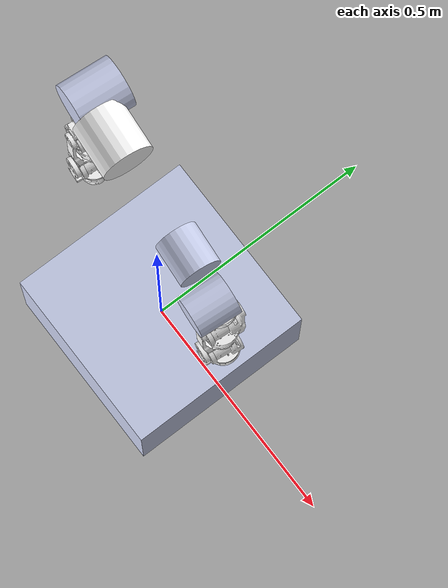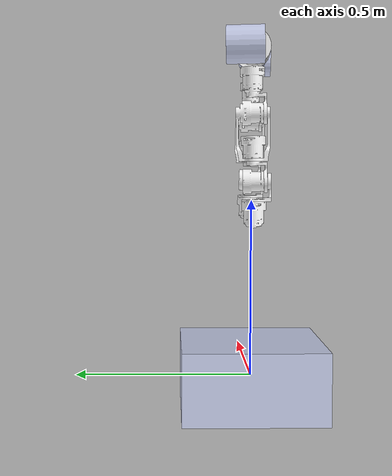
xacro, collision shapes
<?xml version='1.0' encoding='utf-8'?>
<robot name="dual_arm_1kg" xmlns:xacro="http://www.ros.org/wiki/xacro">

  <!-- Hardware plugin parameter: default to mock simulation -->
  <xacro:arg name="hw_plugin" default="mock_components/GenericSystem" />

  <link name="base_link">
    <inertial>
      <origin xyz="-1.7653E-05 0.1789 0.00018456" rpy="0 0 0" />
      <mass value="10.998" />
      <inertia ixx="0.3066" ixy="1.7304E-06" ixz="-1.0288E-05" iyy="0.26623" iyz="7.2468E-05" izz="0.2251" />
    </inertial>
    <visual>
      <origin xyz="0 0 0" rpy="0 0 0" />
      <geometry>
        <mesh filename="package://dual_arm_description/meshes/base_link.STL" />
      </geometry>
      <material name="">
        <color rgba="0.79216 0.81961 0.93333 1" />
      </material>
    </visual>
    <collision>
      <origin xyz="0 0 0" rpy="0 0 0" />
      <geometry>
        <box size="0.4 0.4 0.2" />
      </geometry>
    </collision>
  </link>

  <link name="laxis1_link">
    <inertial>
      <origin xyz="-0.0063819 3.8724E-06 0.0020017" rpy="0 0 0" />
      <mass value="0.21943" />
      <inertia ixx="0.00016599" ixy="-2.3484E-07" ixz="2.0611E-07" iyy="0.00012603" iyz="-1.1767E-05" izz="0.0001292" />
    </inertial>
    <visual>
      <origin xyz="0 0 0" rpy="0 0 0" />
      <geometry>
        <mesh filename="package://dual_arm_description/meshes/laxis1_link.STL" />
      </geometry>
      <material name="">
        <color rgba="0.79216 0.81961 0.93333 1" />
      </material>
    </visual>
    <collision>
      <origin xyz="-0.015 0 0" rpy="0 1.5708 0" />
      <geometry>
        <cylinder length="0.08" radius="0.04" />
      </geometry>
    </collision>
  </link>

  <joint name="laxis1_joint" type="revolute">
    <origin xyz="0.12844 -0.010901 0.9108" rpy="1.5941 0 -0.084669" />
    <parent link="base_link" />
    <child link="laxis1_link" />
    <axis xyz="1 0 0" />
    <limit lower="-3.14" upper="3.14" effort="20" velocity="2.0" />
  </joint>

  <link name="laxis2_link">
    <inertial>
      <origin xyz="-0.0151642205461063 0.00516950311812192 0.0148909964476645" rpy="0 0 0" />
      <mass value="0.213592778567682" />
      <inertia ixx="0.00018235790796228" ixy="5.37132222500932E-08" ixz="5.64047925806823E-07" iyy="0.000132556511272666" iyz="-2.24184763708786E-05" izz="7.53948619611351E-05" />
    </inertial>
    <visual>
      <origin xyz="0 0 0" rpy="0 0 0" />
      <geometry>
        <mesh filename="package://dual_arm_description/meshes/laxis2_link.STL" />
      </geometry>
      <material name="">
        <color rgba="0.792156862745098 0.819607843137255 0.933333333333333 1" />
      </material>
    </visual>
    <collision>
      <origin xyz="0 0 0" rpy="0 1.5708 0" />
      <geometry>
        <cylinder length="0.08" radius="0.04" />
      </geometry>
    </collision>
  </link>

  <joint name="laxis2_joint" type="revolute">
    <origin xyz="0.0774 -3.3783E-05 0.01715" rpy="-2.8 -1.5688 -1.5708" />
    <parent link="laxis1_link" />
    <child link="laxis2_link" />
    <axis xyz="1 0 0" />
    <limit lower="-3.14" upper="3.14" effort="20" velocity="2.0" />
  </joint>

  <link name="laxis3_link">
    <inertial>
      <origin xyz="0.0118441133081597 0.0448173893054227 0.0199281435559954" rpy="0 0 0" />
      <mass value="0.0182957033092308" />
      <inertia ixx="7.87114328237778E-06" ixy="-6.20827217800596E-08" ixz="8.30755431500317E-07" iyy="5.37647483228574E-06" iyz="-1.02401812672426E-07" izz="8.73776705364907E-06" />
    </inertial>
    <visual>
      <origin xyz="0 0 0" rpy="0 0 0" />
      <geometry>
        <mesh filename="package://dual_arm_description/meshes/laxis3_link.STL" />
      </geometry>
      <material name="">
        <color rgba="1 1 1 1" />
      </material>
    </visual>
    <collision>
      <origin xyz="0 0 0" rpy="0 0 0" />
      <geometry>
        <mesh filename="package://dual_arm_description/meshes/laxis3_link.STL" />
      </geometry>
    </collision>
  </link>

  <joint name="laxis3_joint" type="revolute">
    <origin xyz="-0.016833 0.034747 0.1012" rpy="1.393593 0.282990 1.000493" />
    <parent link="laxis2_link" />
    <child link="laxis3_link" />
    <axis xyz="0 1 0" />
    <limit lower="-3.14" upper="3.14" effort="20" velocity="2.0" />
  </joint>

  <link name="laxis4_link">
    <inertial>
      <origin xyz="0.0390421839077606 -0.0250129243501748 -0.0471342611946032" rpy="0 0 0" />
      <mass value="0.0616311590596033" />
      <inertia ixx="4.92339431179852E-05" ixy="3.8209283942534E-08" ixz="3.14550717978551E-05" iyy="7.55120020959109E-05" iyz="-4.61125036476071E-08" izz="3.73333488789559E-05" />
    </inertial>
    <visual>
      <origin xyz="0 0 0" rpy="0 0 0" />
      <geometry>
        <mesh filename="package://dual_arm_description/meshes/laxis4_link.STL" />
      </geometry>
      <material name="">
        <color rgba="1 1 1 1" />
      </material>
    </visual>
    <collision>
      <origin xyz="0 0 0" rpy="0 0 0" />
      <geometry>
        <mesh filename="package://dual_arm_description/meshes/laxis4_link.STL" />
      </geometry>
    </collision>
  </link>

  <joint name="laxis4_joint" type="revolute">
    <origin xyz="0.0098406 0.07055 0.016623" rpy="1.9399 0.41064 0.76965" />
    <parent link="laxis3_link" />
    <child link="laxis4_link" />
    <axis xyz="0 1 0" />
    <limit lower="-3.14" upper="3.14" effort="20" velocity="2.0" />
  </joint>

  <link name="laxis5_link">
    <inertial>
      <origin xyz="-0.0177232598229944 0.0448173893054237 0.0144455274141042" rpy="0 0 0" />
      <mass value="0.0182957033092307" />
      <inertia ixx="8.49343226329802E-06" ixy="9.28243029832125E-08" ixz="-9.17715334217635E-07" iyy="5.37647483228573E-06" iyz="-7.56574144277642E-08" izz="8.11547807272879E-06" />
    </inertial>
    <visual>
      <origin xyz="0 0 0" rpy="0 0 0" />
      <geometry>
        <mesh filename="package://dual_arm_description/meshes/laxis5_link.STL" />
      </geometry>
      <material name="">
        <color rgba="1 1 1 1" />
      </material>
    </visual>
    <collision>
      <origin xyz="0 0 0" rpy="0 0 0" />
      <geometry>
        <mesh filename="package://dual_arm_description/meshes/laxis5_link.STL" />
      </geometry>
    </collision>
  </link>

  <joint name="laxis5_joint" type="revolute">
    <origin xyz="0.068269 -0.019 -0.082391" rpy="-0.989216 -0.398915 -1.037184" />
    <parent link="laxis4_link" />
    <child link="laxis5_link" />
    <axis xyz="0 1 0" />
    <limit lower="-3.14" upper="3.14" effort="20" velocity="2.0" />
  </joint>

  <link name="laxis6_link">
    <inertial>
      <origin xyz="-0.0339956627845139 0.000603513294191727 0.00364359012406729" rpy="0 0 0" />
      <mass value="0.0306349253916363" />
      <inertia ixx="1.26835540628772E-05" ixy="-2.67323256579739E-07" ixz="-5.89188492528862E-08" iyy="1.04375646006907E-05" iyz="2.73962589384525E-08" izz="1.21146824475075E-05" />
    </inertial>
    <visual>
      <origin xyz="0 0 0" rpy="0 0 0" />
      <geometry>
        <mesh filename="package://dual_arm_description/meshes/laxis6_link.STL" />
      </geometry>
      <material name="">
        <color rgba="1 1 1 1" />
      </material>
    </visual>
    <collision>
      <origin xyz="0 0 0" rpy="0 0 0" />
      <geometry>
        <mesh filename="package://dual_arm_description/meshes/laxis6_link.STL" />
      </geometry>
    </collision>
  </link>

  <joint name="laxis6_joint" type="revolute">
    <origin xyz="-0.014851 0.070309 0.012309" rpy="2.4552 0.079108 -1.6355" />
    <parent link="laxis5_link" />
    <child link="laxis6_link" />
    <axis xyz="0 1 0" />
    <limit lower="-3.14" upper="3.14" effort="20" velocity="2.0" />
  </joint>

  <link name="laxis7_link">
    <inertial>
      <origin xyz="0.121269049640641 -0.435142426901518 0.685643187482132" rpy="0 0 0" />
      <mass value="12.1217453298508" />
      <inertia ixx="1.52363058130509" ixy="-0.0377682920302424" ixz="-0.0826026602861309" iyy="1.42942310844602" iyz="-0.339016068416828" izz="0.51577930701864" />
    </inertial>
    <visual>
      <origin xyz="0 0 0" rpy="0 0 0" />
      <geometry>
        <mesh filename="package://dual_arm_description/meshes/laxis7_link.STL" />
      </geometry>
      <material name="">
        <color rgba="1 1 1 1" />
      </material>
    </visual>
    <collision>
      <origin xyz="0 0 0" rpy="0 0 0" />
      <geometry>
        <mesh filename="package://dual_arm_description/meshes/laxis7_link.STL" />
      </geometry>
    </collision>
  </link>

  <joint name="laxis7_joint" type="revolute">
    <origin xyz="-0.098673 -0.019251 0.010129" rpy="2.8661 1.1866 -1.8271" />
    <parent link="laxis6_link" />
    <child link="laxis7_link" />
    <axis xyz="0 1 0" />
    <limit lower="-3.14" upper="3.14" effort="20" velocity="2.0" />
  </joint>

  <link name="raxis1_link">
    <inertial>
      <origin xyz="-0.0063819 3.8724E-06 0.0020017" rpy="0 0 0" />
      <mass value="0.21943" />
      <inertia ixx="0.00016599" ixy="-2.3484E-07" ixz="2.0611E-07" iyy="0.00012603" iyz="-1.1767E-05" izz="0.0001292" />
    </inertial>
    <visual>
      <origin xyz="0 0 0" rpy="0 0 0" />
      <geometry>
        <mesh filename="package://dual_arm_description/meshes/raxis1_link.STL" />
      </geometry>
      <material name="">
        <color rgba="1 1 1 1" />
      </material>
    </visual>
    <collision>
      <origin xyz="-0.03 0 0" rpy="0 1.5708 0" />
      <geometry>
        <cylinder length="0.1" radius="0.05" />
      </geometry>
    </collision>
  </link>

  <joint name="raxis1_joint" type="revolute">
    <origin xyz="-0.1541 0.013079 0.9108" rpy="0.7964 0 3.0569" />
    <parent link="base_link" />
    <child link="raxis1_link" />
    <axis xyz="1 0 0" />
    <limit lower="-3.14" upper="3.14" effort="20" velocity="2.0" />
  </joint>

  <link name="raxis2_link">
    <inertial>
      <origin xyz="-0.0135829266625127 0.0049600143853062 0.0137183768489762" rpy="0 0 0" />
      <mass value="0.224824025857165" />
      <inertia ixx="0.000194483151460783" ixy="5.50607221353687E-08" ixz="5.53204099003949E-07" iyy="0.00014024241041905" iyz="-2.20538985705619E-05" izz="7.99268291278131E-05" />
    </inertial>
    <visual>
      <origin xyz="0 0 0" rpy="0 0 0" />
      <geometry>
        <mesh filename="package://dual_arm_description/meshes/raxis2_link.STL" />
      </geometry>
      <material name="">
        <color rgba="0.792156862745098 0.819607843137255 0.933333333333333 1" />
      </material>
    </visual>
    <collision>
      <origin xyz="0 0 0" rpy="0 1.5708 0" />
      <geometry>
        <cylinder length="0.1" radius="0.05" />
      </geometry>
    </collision>
  </link>

  <joint name="raxis2_joint" type="revolute">
    <origin xyz="0.051649 -0.012151 0.012103" rpy="-2.8016 -0.78343 -1.5708" />
    <parent link="raxis1_link" />
    <child link="raxis2_link" />
    <axis xyz="-1 0 0" />
    <limit lower="-3.14" upper="3.14" effort="20" velocity="2.0" />
  </joint>

  <link name="raxis3_link">
    <inertial>
      <origin xyz="0.0118441133081594 0.0448173893054226 0.019928143555995" rpy="0 0 0" />
      <mass value="0.0182957033092306" />
      <inertia ixx="7.87114328237767E-06" ixy="-6.20827217800463E-08" ixz="8.30755431500304E-07" iyy="5.37647483228571E-06" iyz="-1.0240181267241E-07" izz="8.73776705364897E-06" />
    </inertial>
    <visual>
      <origin xyz="0 0 0" rpy="0 0 0" />
      <geometry>
        <mesh filename="package://dual_arm_description/meshes/raxis3_link.STL" />
      </geometry>
      <material name="">
        <color rgba="1 1 1 1" />
      </material>
    </visual>
    <collision>
      <origin xyz="0 0 0" rpy="0 0 0" />
      <geometry>
        <mesh filename="package://dual_arm_description/meshes/raxis3_link.STL" />
      </geometry>
    </collision>
  </link>

  <joint name="raxis3_joint" type="revolute">
    <origin xyz="-0.016833 0.034747 0.1012" rpy="1.748 -0.28299 -2.1411" />
    <parent link="raxis2_link" />
    <child link="raxis3_link" />
    <axis xyz="0 1 0" />
    <limit lower="-3.14" upper="3.14" effort="20" velocity="2.0" />
  </joint>

  <link name="raxis4_link">
    <inertial>
      <origin xyz="0.0390421832632567 -0.0250129212766904 -0.0471342604671557" rpy="0 0 0" />
      <mass value="0.0616311576943978" />
      <inertia ixx="4.9233941619484E-05" ixy="3.82096445631055E-08" ixz="3.14550705061862E-05" iyy="7.55119995175738E-05" iyz="-4.61129422819847E-08" izz="3.73333477929218E-05" />
    </inertial>
    <visual>
      <origin xyz="0 0 0" rpy="0 0 0" />
      <geometry>
        <mesh filename="package://dual_arm_description/meshes/raxis4_link.STL" />
      </geometry>
      <material name="">
        <color rgba="1 1 1 1" />
      </material>
    </visual>
    <collision>
      <origin xyz="0 0 0" rpy="0 0 0" />
      <geometry>
        <mesh filename="package://dual_arm_description/meshes/raxis4_link.STL" />
      </geometry>
    </collision>
  </link>

  <joint name="raxis4_joint" type="revolute">
    <origin xyz="0.0098406 0.07055 0.016623" rpy="1.9399 0.41064 0.76965" />
    <parent link="raxis3_link" />
    <child link="raxis4_link" />
    <axis xyz="0 1 0" />
    <limit lower="-3.14" upper="3.14" effort="20" velocity="2.0" />
  </joint>

  <link name="raxis5_link">
    <inertial>
      <origin xyz="-0.0177232598229943 0.0448173893054233 0.0144455274141044" rpy="0 0 0" />
      <mass value="0.0182957033092307" />
      <inertia ixx="8.493432263298E-06" ixy="9.28243029832134E-08" ixz="-9.17715334217627E-07" iyy="5.37647483228571E-06" iyz="-7.56574144277652E-08" izz="8.11547807272879E-06" />
    </inertial>
    <visual>
      <origin xyz="0 0 0" rpy="0 0 0" />
      <geometry>
        <mesh filename="package://dual_arm_description/meshes/raxis5_link.STL" />
      </geometry>
      <material name="">
        <color rgba="1 1 1 1" />
      </material>
    </visual>
    <collision>
      <origin xyz="0 0 0" rpy="0 0 0" />
      <geometry>
        <mesh filename="package://dual_arm_description/meshes/raxis5_link.STL" />
      </geometry>
    </collision>
  </link>

  <joint name="raxis5_joint" type="revolute">
    <origin xyz="0.068269 -0.019 -0.082391" rpy="-0.995458 -0.408458 -1.021292" />
    <parent link="raxis4_link" />
    <child link="raxis5_link" />
    <axis xyz="0 1 0" />
    <limit lower="-3.14" upper="3.14" effort="20" velocity="2.0" />
  </joint>

  <link name="raxis6_link">
    <inertial>
      <origin xyz="-0.0339956627845134 0.000603513294192171 0.00364359012406797" rpy="0 0 0" />
      <mass value="0.0306349253916362" />
      <inertia ixx="1.26835540628772E-05" ixy="-2.67323256579738E-07" ixz="-5.89188492528661E-08" iyy="1.04375646006907E-05" iyz="2.73962589384556E-08" izz="1.21146824475075E-05" />
    </inertial>
    <visual>
      <origin xyz="0 0 0" rpy="0 0 0" />
      <geometry>
        <mesh filename="package://dual_arm_description/meshes/raxis6_link.STL" />
      </geometry>
      <material name="">
        <color rgba="1 1 1 1" />
      </material>
    </visual>
    <collision>
      <origin xyz="0 0 0" rpy="0 0 0" />
      <geometry>
        <mesh filename="package://dual_arm_description/meshes/raxis6_link.STL" />
      </geometry>
    </collision>
  </link>

  <joint name="raxis6_joint" type="revolute">
    <origin xyz="-0.014851 0.070309 0.012309" rpy="2.4552 0.079108 -1.6355" />
    <parent link="raxis5_link" />
    <child link="raxis6_link" />
    <axis xyz="0 1 0" />
    <limit lower="-3.14" upper="3.14" effort="20" velocity="2.0" />
  </joint>

  <link name="raxis7_link">
    <inertial>
      <origin xyz="-0.302167148563779 -0.618500704965407 0.605751449374939" rpy="0 0 0" />
      <mass value="12.1217453298508" />
      <inertia ixx="1.17417086774541" ixy="0.00811410119519612" ixz="0.527879311234981" iyy="1.53867726117563" iyz="-0.0310569472971539" izz="0.755984867848713" />
    </inertial>
    <visual>
      <origin xyz="0 0 0" rpy="0 0 0" />
      <geometry>
        <mesh filename="package://dual_arm_description/meshes/raxis7_link.STL" />
      </geometry>
      <material name="">
        <color rgba="1 1 1 1" />
      </material>
    </visual>
    <collision>
      <origin xyz="0 0 0" rpy="0 0 0" />
      <geometry>
        <mesh filename="package://dual_arm_description/meshes/raxis7_link.STL" />
      </geometry>
    </collision>
  </link>

  <joint name="raxis7_joint" type="revolute">
    <origin xyz="-0.098673 -0.019251 0.010129" rpy="2.8661 1.1866 -1.8271" />
    <parent link="raxis6_link" />
    <child link="raxis7_link" />
    <axis xyz="0 1 0" />
    <limit lower="-3.14" upper="3.14" effort="20" velocity="2.0" />
  </joint>

  <!-- ros2_control hardware interface -->
  <ros2_control name="DualArmSystem" type="system">
    <hardware>
      <plugin>$(arg hw_plugin)</plugin>
    </hardware>

    <!-- Left arm joints -->
    <joint name="laxis1_joint">
      <command_interface name="position"/>
      <command_interface name="velocity"/>
      <state_interface name="position">
        <param name="initial_value">0.3</param>
      </state_interface>
      <state_interface name="velocity"/>
      <state_interface name="effort"/>
    </joint>
    <joint name="laxis2_joint">
      <command_interface name="position"/>
      <command_interface name="velocity"/>
      <state_interface name="position">
        <param name="initial_value">0.0</param>
      </state_interface>
      <state_interface name="velocity"/>
      <state_interface name="effort"/>
    </joint>
    <joint name="laxis3_joint">
      <command_interface name="position"/>
      <command_interface name="velocity"/>
      <state_interface name="position">
        <param name="initial_value">1.2</param>
      </state_interface>
      <state_interface name="velocity"/>
      <state_interface name="effort"/>
    </joint>
    <joint name="laxis4_joint">
      <command_interface name="position"/>
      <command_interface name="velocity"/>
      <state_interface name="position">
        <param name="initial_value">1.2</param>
      </state_interface>
      <state_interface name="velocity"/>
      <state_interface name="effort"/>
    </joint>
    <joint name="laxis5_joint">
      <command_interface name="position"/>
      <command_interface name="velocity"/>
      <state_interface name="position">
        <param name="initial_value">0.0</param>
      </state_interface>
      <state_interface name="velocity"/>
      <state_interface name="effort"/>
    </joint>
    <joint name="laxis6_joint">
      <command_interface name="position"/>
      <command_interface name="velocity"/>
      <state_interface name="position">
        <param name="initial_value">0.0</param>
      </state_interface>
      <state_interface name="velocity"/>
      <state_interface name="effort"/>
    </joint>
    <joint name="laxis7_joint">
      <command_interface name="position"/>
      <command_interface name="velocity"/>
      <state_interface name="position">
        <param name="initial_value">0.0</param>
      </state_interface>
      <state_interface name="velocity"/>
      <state_interface name="effort"/>
    </joint>

    <!-- Right arm joints -->
    <joint name="raxis1_joint">
      <command_interface name="position"/>
      <command_interface name="velocity"/>
      <state_interface name="position">
        <param name="initial_value">-0.3</param>
      </state_interface>
      <state_interface name="velocity"/>
      <state_interface name="effort"/>
    </joint>
    <joint name="raxis2_joint">
      <command_interface name="position"/>
      <command_interface name="velocity"/>
      <state_interface name="position">
        <param name="initial_value">0.0</param>
      </state_interface>
      <state_interface name="velocity"/>
      <state_interface name="effort"/>
    </joint>
    <joint name="raxis3_joint">
      <command_interface name="position"/>
      <command_interface name="velocity"/>
      <state_interface name="position">
        <param name="initial_value">-1.2</param>
      </state_interface>
      <state_interface name="velocity"/>
      <state_interface name="effort"/>
    </joint>
    <joint name="raxis4_joint">
      <command_interface name="position"/>
      <command_interface name="velocity"/>
      <state_interface name="position">
        <param name="initial_value">-1.2</param>
      </state_interface>
      <state_interface name="velocity"/>
      <state_interface name="effort"/>
    </joint>
    <joint name="raxis5_joint">
      <command_interface name="position"/>
      <command_interface name="velocity"/>
      <state_interface name="position">
        <param name="initial_value">0.0</param>
      </state_interface>
      <state_interface name="velocity"/>
      <state_interface name="effort"/>
    </joint>
    <joint name="raxis6_joint">
      <command_interface name="position"/>
      <command_interface name="velocity"/>
      <state_interface name="position">
        <param name="initial_value">0.0</param>
      </state_interface>
      <state_interface name="velocity"/>
      <state_interface name="effort"/>
    </joint>
    <joint name="raxis7_joint">
      <command_interface name="position"/>
      <command_interface name="velocity"/>
      <state_interface name="position">
        <param name="initial_value">0.0</param>
      </state_interface>
      <state_interface name="velocity"/>
      <state_interface name="effort"/>
    </joint>
  </ros2_control>

</robot>
